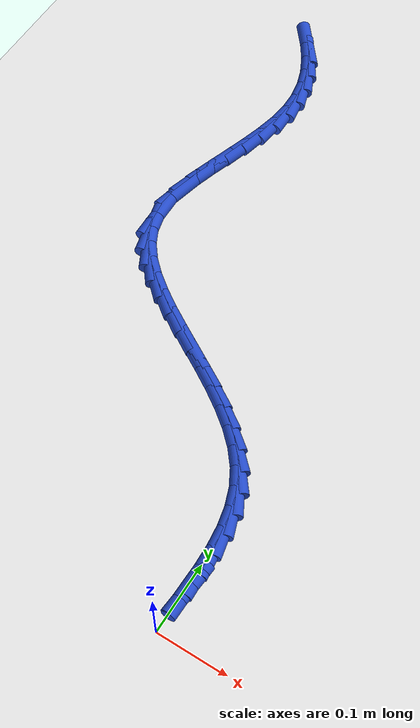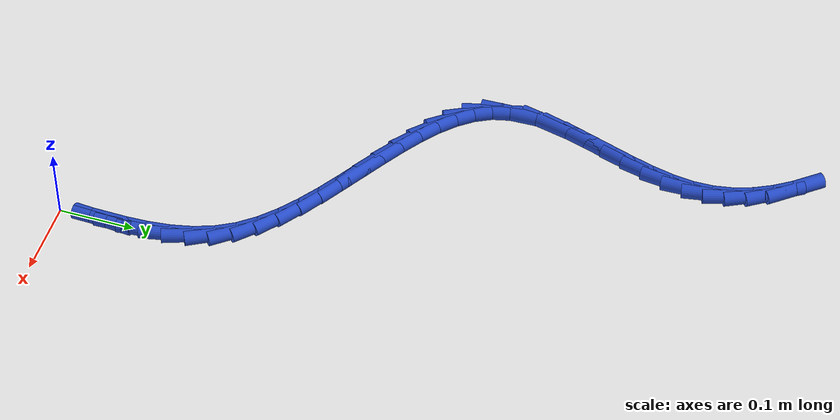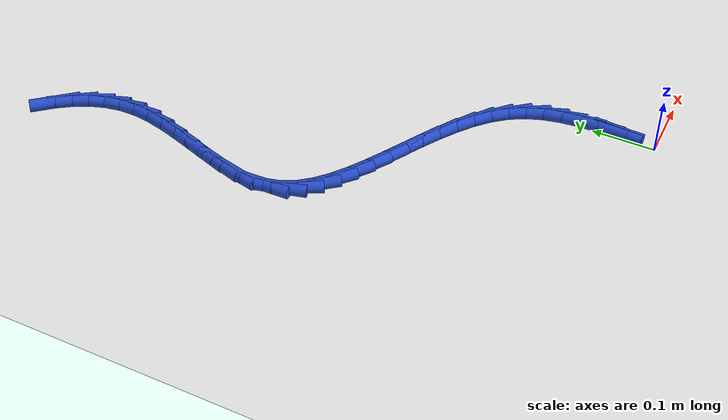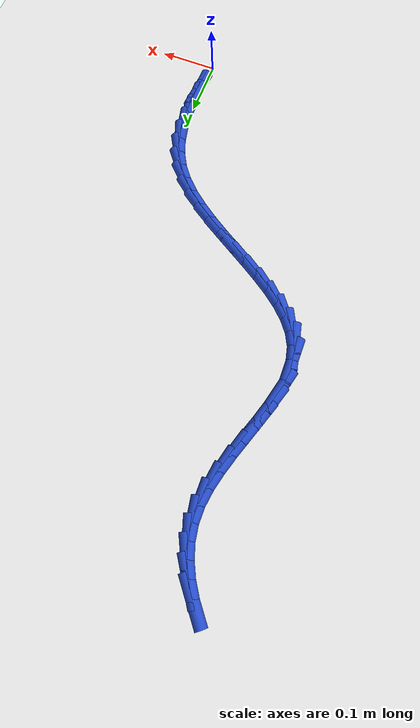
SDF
<sdf version="1.6">
 <world name="default">
  <model name="ground_plane">
   <static>1</static>
   <link name="link">
    <collision name="collision">
     <geometry><plane><normal>0 0 1</normal><size>100 100</size></plane></geometry>
     <surface><friction><ode><mu>100</mu><mu2>50</mu2></ode></friction></surface>
    </collision>
    <visual name="visual">
     <cast_shadows>0</cast_shadows>
     <geometry><plane><normal>0 0 1</normal><size>100 100</size></plane></geometry>
     <material>
      <script><uri>file://media/materials/scripts/gazebo.material</uri><name>Gazebo/WhiteGlow</name></script>
     </material>
    </visual>
   </link>
  </model>
  <model name="line">
   <link name="link_2">
    <pose>0.0039018380519931055 0.06105335627017318 0.01 0 1.57 1.5514496398924034</pose>
    <collision name="collision">
     <geometry><cylinder><radius>0.01</radius><length>0.08</length></cylinder></geometry>
    </collision>
    <visual name="visual">
     <material>
      <script><name>Gazebo/Blue</name><uri>file://media/materials/scripts/gazebo.material</uri></script>
     </material>
     <geometry><cylinder><radius>0.01</radius><length>0.08</length></cylinder></geometry>
    </visual>
   </link>
   <link name="link_3">
    <pose>0.004492147283200464 0.09156171062314061 0.01 0 1.57 -1.5340823188433497</pose>
    <collision name="collision">
     <geometry><cylinder><radius>0.01</radius><length>0.08</length></cylinder></geometry>
    </collision>
    <visual name="visual">
     <material>
      <script><name>Gazebo/Blue</name><uri>file://media/materials/scripts/gazebo.material</uri></script>
     </material>
     <geometry><cylinder><radius>0.01</radius><length>0.08</length></cylinder></geometry>
    </visual>
   </link>
   <link name="link_4">
    <pose>0.0033892902304521197 0.12158734795586665 0.01 0 1.57 -1.4553277439843841</pose>
    <collision name="collision">
     <geometry><cylinder><radius>0.01</radius><length>0.08</length></cylinder></geometry>
    </collision>
    <visual name="visual">
     <material>
      <script><name>Gazebo/Blue</name><uri>file://media/materials/scripts/gazebo.material</uri></script>
     </material>
     <geometry><cylinder><radius>0.01</radius><length>0.08</length></cylinder></geometry>
    </visual>
   </link>
   <link name="link_5">
    <pose>3.697078175896734e-06 0.15077739239422996 0.01 0 1.57 -1.3509254751311575</pose>
    <collision name="collision">
     <geometry><cylinder><radius>0.01</radius><length>0.08</length></cylinder></geometry>
    </collision>
    <visual name="visual">
     <material>
      <script><name>Gazebo/Blue</name><uri>file://media/materials/scripts/gazebo.material</uri></script>
     </material>
     <geometry><cylinder><radius>0.01</radius><length>0.08</length></cylinder></geometry>
    </visual>
   </link>
   <link name="link_6">
    <pose>-0.006254201989200389 0.17877896806410914 0.01 0 1.57 -1.2187623375297787</pose>
    <collision name="collision">
     <geometry><cylinder><radius>0.01</radius><length>0.08</length></cylinder></geometry>
    </collision>
    <visual name="visual">
     <material>
      <script><name>Gazebo/Blue</name><uri>file://media/materials/scripts/gazebo.material</uri></script>
     </material>
     <geometry><cylinder><radius>0.01</radius><length>0.08</length></cylinder></geometry>
    </visual>
   </link>
   <link name="link_7">
    <pose>-0.015973976787248906 0.2052391990913826 0.01 0 1.57 -1.0601162414800824</pose>
    <collision name="collision">
     <geometry><cylinder><radius>0.01</radius><length>0.08</length></cylinder></geometry>
    </collision>
    <visual name="visual">
     <material>
      <script><name>Gazebo/Blue</name><uri>file://media/materials/scripts/gazebo.material</uri></script>
     </material>
     <geometry><cylinder><radius>0.01</radius><length>0.08</length></cylinder></geometry>
    </visual>
   </link>
   <link name="link_8">
    <pose>-0.02973888764191233 0.22980834411360912 0.01 0 1.57 -0.8993566565316626</pose>
    <collision name="collision">
     <geometry><cylinder><radius>0.01</radius><length>0.08</length></cylinder></geometry>
    </collision>
    <visual name="visual">
     <material>
      <script><name>Gazebo/Blue</name><uri>file://media/materials/scripts/gazebo.material</uri></script>
     </material>
     <geometry><cylinder><radius>0.01</radius><length>0.08</length></cylinder></geometry>
    </visual>
   </link>
   <link name="link_9">
    <pose>-0.04766528565710766 0.25236861910497177 0.01 0 1.57 -0.7711109970541713</pose>
    <collision name="collision">
     <geometry><cylinder><radius>0.01</radius><length>0.08</length></cylinder></geometry>
    </collision>
    <visual name="visual">
     <material>
      <script><name>Gazebo/Blue</name><uri>file://media/materials/scripts/gazebo.material</uri></script>
     </material>
     <geometry><cylinder><radius>0.01</radius><length>0.08</length></cylinder></geometry>
    </visual>
   </link>
   <link name="link_10">
    <pose>-0.06908985146469539 0.27318957504528624 0.01 0 1.57 -0.6757411114535261</pose>
    <collision name="collision">
     <geometry><cylinder><radius>0.01</radius><length>0.08</length></cylinder></geometry>
    </collision>
    <visual name="visual">
     <material>
      <script><name>Gazebo/Blue</name><uri>file://media/materials/scripts/gazebo.material</uri></script>
     </material>
     <geometry><cylinder><radius>0.01</radius><length>0.08</length></cylinder></geometry>
    </visual>
   </link>
   <link name="link_11">
    <pose>-0.0932752014727869 0.29257755751869324 0.01 0 1.57 -0.6085518937526516</pose>
    <collision name="collision">
     <geometry><cylinder><radius>0.01</radius><length>0.08</length></cylinder></geometry>
    </collision>
    <visual name="visual">
     <material>
      <script><name>Gazebo/Blue</name><uri>file://media/materials/scripts/gazebo.material</uri></script>
     </material>
     <geometry><cylinder><radius>0.01</radius><length>0.08</length></cylinder></geometry>
    </visual>
   </link>
   <link name="link_12">
    <pose>-0.11948395208949357 0.31083891210933295 0.01 0 1.57 -0.5652886176346286</pose>
    <collision name="collision">
     <geometry><cylinder><radius>0.01</radius><length>0.08</length></cylinder></geometry>
    </collision>
    <visual name="visual">
     <material>
      <script><name>Gazebo/Blue</name><uri>file://media/materials/scripts/gazebo.material</uri></script>
     </material>
     <geometry><cylinder><radius>0.01</radius><length>0.08</length></cylinder></geometry>
    </visual>
   </link>
   <link name="link_13">
    <pose>-0.1469787197229268 0.32827998440134615 0.01 0 1.57 -0.5430659805599921</pose>
    <collision name="collision">
     <geometry><cylinder><radius>0.01</radius><length>0.08</length></cylinder></geometry>
    </collision>
    <visual name="visual">
     <material>
      <script><name>Gazebo/Blue</name><uri>file://media/materials/scripts/gazebo.material</uri></script>
     </material>
     <geometry><cylinder><radius>0.01</radius><length>0.08</length></cylinder></geometry>
    </visual>
   </link>
   <link name="link_14">
    <pose>-0.17502212078119783 0.345207119978873 0.01 0 1.57 -0.5405977678383085</pose>
    <collision name="collision">
     <geometry><cylinder><radius>0.01</radius><length>0.08</length></cylinder></geometry>
    </collision>
    <visual name="visual">
     <material>
      <script><name>Gazebo/Blue</name><uri>file://media/materials/scripts/gazebo.material</uri></script>
     </material>
     <geometry><cylinder><radius>0.01</radius><length>0.08</length></cylinder></geometry>
    </visual>
   </link>
   <link name="link_15">
    <pose>-0.20287677167241824 0.3619266644260542 0.01 0 1.57 -0.5582781529216244</pose>
    <collision name="collision">
     <geometry><cylinder><radius>0.01</radius><length>0.08</length></cylinder></geometry>
    </collision>
    <visual name="visual">
     <material>
      <script><name>Gazebo/Blue</name><uri>file://media/materials/scripts/gazebo.material</uri></script>
     </material>
     <geometry><cylinder><radius>0.01</radius><length>0.08</length></cylinder></geometry>
    </visual>
   </link>
   <link name="link_16">
    <pose>-0.22980528880469925 0.37874496332703006 0.01 0 1.57 -0.5983449294985728</pose>
    <collision name="collision">
     <geometry><cylinder><radius>0.01</radius><length>0.08</length></cylinder></geometry>
    </collision>
    <visual name="visual">
     <material>
      <script><name>Gazebo/Blue</name><uri>file://media/materials/scripts/gazebo.material</uri></script>
     </material>
     <geometry><cylinder><radius>0.01</radius><length>0.08</length></cylinder></geometry>
    </visual>
   </link>
   <link name="link_17">
    <pose>-0.25507028858615244 0.3959683622659414 0.01 0 1.57 -0.6651627455581808</pose>
    <collision name="collision">
     <geometry><cylinder><radius>0.01</radius><length>0.08</length></cylinder></geometry>
    </collision>
    <visual name="visual">
     <material>
      <script><name>Gazebo/Blue</name><uri>file://media/materials/scripts/gazebo.material</uri></script>
     </material>
     <geometry><cylinder><radius>0.01</radius><length>0.08</length></cylinder></geometry>
    </visual>
   </link>
   <link name="link_18">
    <pose>-0.2779343874248888 0.4139032068269282 0.01 0 1.57 -0.7654109205332545</pose>
    <collision name="collision">
     <geometry><cylinder><radius>0.01</radius><length>0.08</length></cylinder></geometry>
    </collision>
    <visual name="visual">
     <material>
      <script><name>Gazebo/Blue</name><uri>file://media/materials/scripts/gazebo.material</uri></script>
     </material>
     <geometry><cylinder><radius>0.01</radius><length>0.08</length></cylinder></geometry>
    </visual>
   </link>
   <link name="link_19">
    <pose>-0.2976602017290202 0.43285584259413146 0.01 0 1.57 -0.9073202875811928</pose>
    <collision name="collision">
     <geometry><cylinder><radius>0.01</radius><length>0.08</length></cylinder></geometry>
    </collision>
    <visual name="visual">
     <material>
      <script><name>Gazebo/Blue</name><uri>file://media/materials/scripts/gazebo.material</uri></script>
     </material>
     <geometry><cylinder><radius>0.01</radius><length>0.08</length></cylinder></geometry>
    </visual>
   </link>
   <link name="link_20">
    <pose>-0.31351034790665766 0.4531326151516913 0.01 0 1.57 -1.096850853582554</pose>
    <collision name="collision">
     <geometry><cylinder><radius>0.01</radius><length>0.08</length></cylinder></geometry>
    </collision>
    <visual name="visual">
     <material>
      <script><name>Gazebo/Blue</name><uri>file://media/materials/scripts/gazebo.material</uri></script>
     </material>
     <geometry><cylinder><radius>0.01</radius><length>0.08</length></cylinder></geometry>
    </visual>
   </link>
   <link name="link_21">
    <pose>-0.3247474423659125 0.47503987008374815 0.01 0 1.57 -1.327591362405287</pose>
    <collision name="collision">
     <geometry><cylinder><radius>0.01</radius><length>0.08</length></cylinder></geometry>
    </collision>
    <visual name="visual">
     <material>
      <script><name>Gazebo/Blue</name><uri>file://media/materials/scripts/gazebo.material</uri></script>
     </material>
     <geometry><cylinder><radius>0.01</radius><length>0.08</length></cylinder></geometry>
    </visual>
   </link>
   <link name="link_22">
    <pose>-0.33066106477680074 0.49887394678724173 0.01 0 1.57 -1.5443752632145826</pose>
    <collision name="collision">
     <geometry><cylinder><radius>0.01</radius><length>0.08</length></cylinder></geometry>
    </collision>
    <visual name="visual">
     <material>
      <script><name>Gazebo/Blue</name><uri>file://media/materials/scripts/gazebo.material</uri></script>
     </material>
     <geometry><cylinder><radius>0.01</radius><length>0.08</length></cylinder></geometry>
    </visual>
   </link>
   <link name="link_24">
    <pose>-0.32779698044728367 0.5519786875273395 0.01 0 1.57 1.340014590913003</pose>
    <collision name="collision">
     <geometry><cylinder><radius>0.01</radius><length>0.08</length></cylinder></geometry>
    </collision>
    <visual name="visual">
     <material>
      <script><name>Gazebo/Blue</name><uri>file://media/materials/scripts/gazebo.material</uri></script>
     </material>
     <geometry><cylinder><radius>0.01</radius><length>0.08</length></cylinder></geometry>
    </visual>
   </link>
   <link name="link_25">
    <pose>-0.32108397897142604 0.5805485286612506 0.01 0 1.57 1.2795533711880922</pose>
    <collision name="collision">
     <geometry><cylinder><radius>0.01</radius><length>0.08</length></cylinder></geometry>
    </collision>
    <visual name="visual">
     <material>
      <script><name>Gazebo/Blue</name><uri>file://media/materials/scripts/gazebo.material</uri></script>
     </material>
     <geometry><cylinder><radius>0.01</radius><length>0.08</length></cylinder></geometry>
    </visual>
   </link>
   <link name="link_26">
    <pose>-0.3122602844653627 0.6099837118184683 0.01 0 1.57 1.2521552456360279</pose>
    <collision name="collision">
     <geometry><cylinder><radius>0.01</radius><length>0.08</length></cylinder></geometry>
    </collision>
    <visual name="visual">
     <material>
      <script><name>Gazebo/Blue</name><uri>file://media/materials/scripts/gazebo.material</uri></script>
     </material>
     <geometry><cylinder><radius>0.01</radius><length>0.08</length></cylinder></geometry>
    </visual>
   </link>
   <link name="link_27">
    <pose>-0.3023833568119891 0.6399245081345416 0.01 0 1.57 1.2537253050259503</pose>
    <collision name="collision">
     <geometry><cylinder><radius>0.01</radius><length>0.08</length></cylinder></geometry>
    </collision>
    <visual name="visual">
     <material>
      <script><name>Gazebo/Blue</name><uri>file://media/materials/scripts/gazebo.material</uri></script>
     </material>
     <geometry><cylinder><radius>0.01</radius><length>0.08</length></cylinder></geometry>
    </visual>
   </link>
   <link name="link_28">
    <pose>-0.29251065589420017 0.670011188745019 0.01 0 1.57 1.2839783187587765</pose>
    <collision name="collision">
     <geometry><cylinder><radius>0.01</radius><length>0.08</length></cylinder></geometry>
    </collision>
    <visual name="visual">
     <material>
      <script><name>Gazebo/Blue</name><uri>file://media/materials/scripts/gazebo.material</uri></script>
     </material>
     <geometry><cylinder><radius>0.01</radius><length>0.08</length></cylinder></geometry>
    </visual>
   </link>
   <link name="link_29">
    <pose>-0.28369964159489147 0.6998840247854494 0.01 0 1.57 1.3462507991636254</pose>
    <collision name="collision">
     <geometry><cylinder><radius>0.01</radius><length>0.08</length></cylinder></geometry>
    </collision>
    <visual name="visual">
     <material>
      <script><name>Gazebo/Blue</name><uri>file://media/materials/scripts/gazebo.material</uri></script>
     </material>
     <geometry><cylinder><radius>0.01</radius><length>0.08</length></cylinder></geometry>
    </visual>
   </link>
   <link name="link_30">
    <pose>-0.2770077737969581 0.7291832873913813 0.01 0 1.57 1.4474995937967319</pose>
    <collision name="collision">
     <geometry><cylinder><radius>0.01</radius><length>0.08</length></cylinder></geometry>
    </collision>
    <visual name="visual">
     <material>
      <script><name>Gazebo/Blue</name><uri>file://media/materials/scripts/gazebo.material</uri></script>
     </material>
     <geometry><cylinder><radius>0.01</radius><length>0.08</length></cylinder></geometry>
    </visual>
   </link>
   <link name="link_31">
    <pose>-0.27349251238329536 0.7575492476983636 0.01 0 1.57 -1.549735292296543</pose>
    <collision name="collision">
     <geometry><cylinder><radius>0.01</radius><length>0.08</length></cylinder></geometry>
    </collision>
    <visual name="visual">
     <material>
      <script><name>Gazebo/Blue</name><uri>file://media/materials/scripts/gazebo.material</uri></script>
     </material>
     <geometry><cylinder><radius>0.01</radius><length>0.08</length></cylinder></geometry>
    </visual>
   </link>
   <link name="link_32">
    <pose>-0.27406382932211953 0.7846719640060903 0.01 0 1.57 -1.3922014786764056</pose>
    <collision name="collision">
     <geometry><cylinder><radius>0.01</radius><length>0.08</length></cylinder></geometry>
    </collision>
    <visual name="visual">
     <material>
      <script><name>Gazebo/Blue</name><uri>file://media/materials/scripts/gazebo.material</uri></script>
     </material>
     <geometry><cylinder><radius>0.01</radius><length>0.08</length></cylinder></geometry>
    </visual>
   </link>
   <link name="link_33">
    <pose>-0.2787342813471977 0.8105444330596276 0.01 0 1.57 -1.2417288068916015</pose>
    <collision name="collision">
     <geometry><cylinder><radius>0.01</radius><length>0.08</length></cylinder></geometry>
    </collision>
    <visual name="visual">
     <material>
      <script><name>Gazebo/Blue</name><uri>file://media/materials/scripts/gazebo.material</uri></script>
     </material>
     <geometry><cylinder><radius>0.01</radius><length>0.08</length></cylinder></geometry>
    </visual>
   </link>
   <link name="link_34">
    <pose>-0.2871788781669887 0.8352735965953476 0.01 0 1.57 -1.1055751893098997</pose>
    <collision name="collision">
     <geometry><cylinder><radius>0.01</radius><length>0.08</length></cylinder></geometry>
    </collision>
    <visual name="visual">
     <material>
      <script><name>Gazebo/Blue</name><uri>file://media/materials/scripts/gazebo.material</uri></script>
     </material>
     <geometry><cylinder><radius>0.01</radius><length>0.08</length></cylinder></geometry>
    </visual>
   </link>
   <link name="link_35">
    <pose>-0.29907201971968467 0.8589666021884015 0.01 0 1.57 -0.9876727680534427</pose>
    <collision name="collision">
     <geometry><cylinder><radius>0.01</radius><length>0.08</length></cylinder></geometry>
    </collision>
    <visual name="visual">
     <material>
      <script><name>Gazebo/Blue</name><uri>file://media/materials/scripts/gazebo.material</uri></script>
     </material>
     <geometry><cylinder><radius>0.01</radius><length>0.08</length></cylinder></geometry>
    </visual>
   </link>
   <link name="link_36">
    <pose>-0.31408810594347736 0.8817305974139413 0.01 0 1.57 -0.8888793751144966</pose>
    <collision name="collision">
     <geometry><cylinder><radius>0.01</radius><length>0.08</length></cylinder></geometry>
    </collision>
    <visual name="visual">
     <material>
      <script><name>Gazebo/Blue</name><uri>file://media/materials/scripts/gazebo.material</uri></script>
     </material>
     <geometry><cylinder><radius>0.01</radius><length>0.08</length></cylinder></geometry>
    </visual>
   </link>
   <link name="link_282">
    <pose>0.004860982713997061 0.06165213731980855 0.01 0 1.57 1.4921137794227646</pose>
    <collision name="collision">
     <geometry><cylinder><radius>0.01</radius><length>0.08</length></cylinder></geometry>
    </collision>
    <visual name="visual">
     <material>
      <script><name>Gazebo/Blue</name><uri>file://media/materials/scripts/gazebo.material</uri></script>
     </material>
     <geometry><cylinder><radius>0.01</radius><length>0.08</length></cylinder></geometry>
    </visual>
   </link>
  </model>
 </world>
</sdf>
